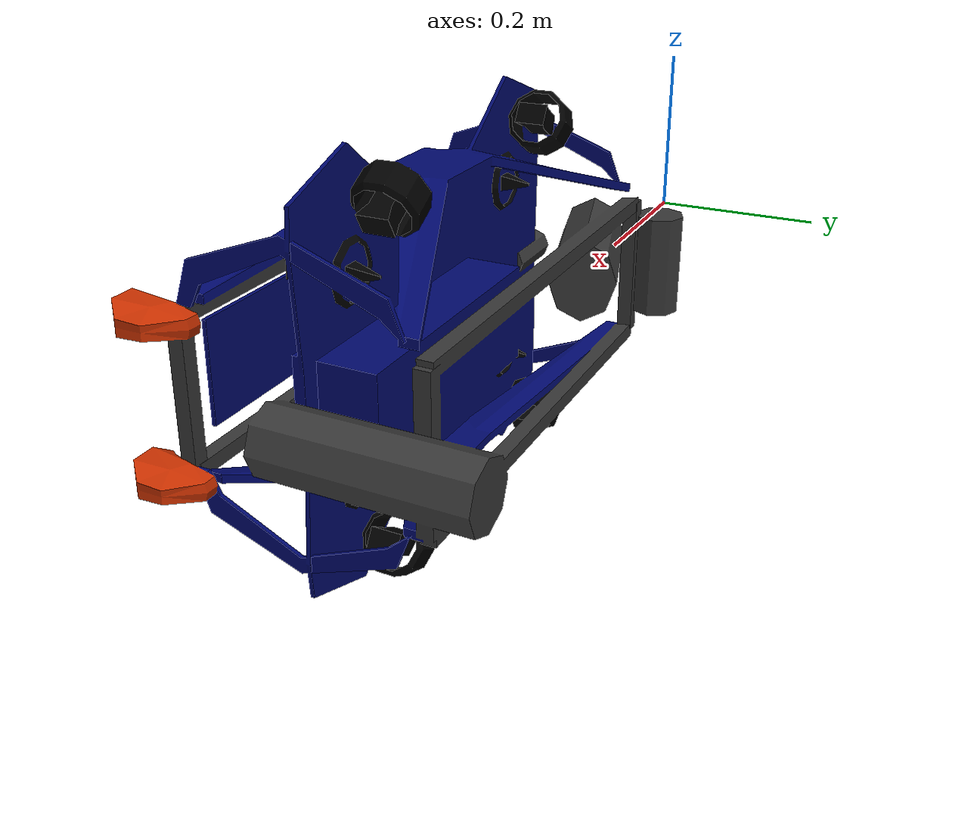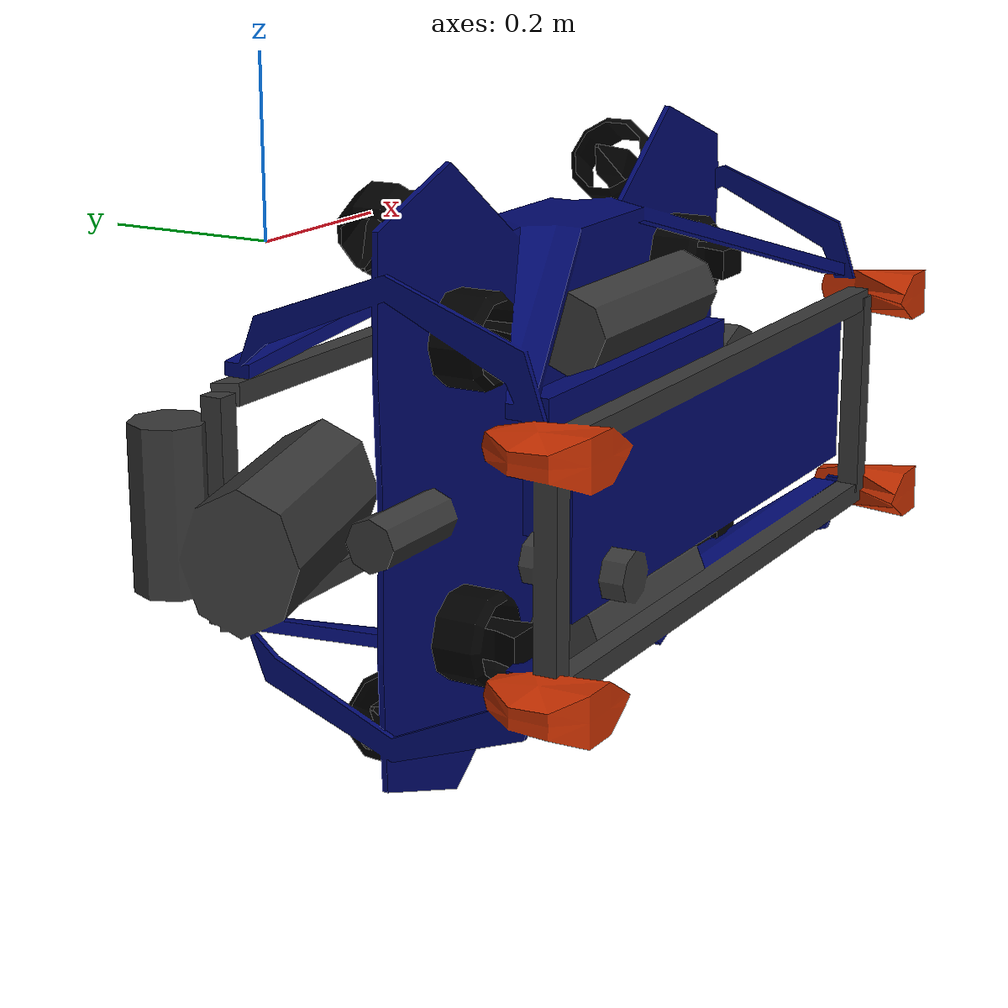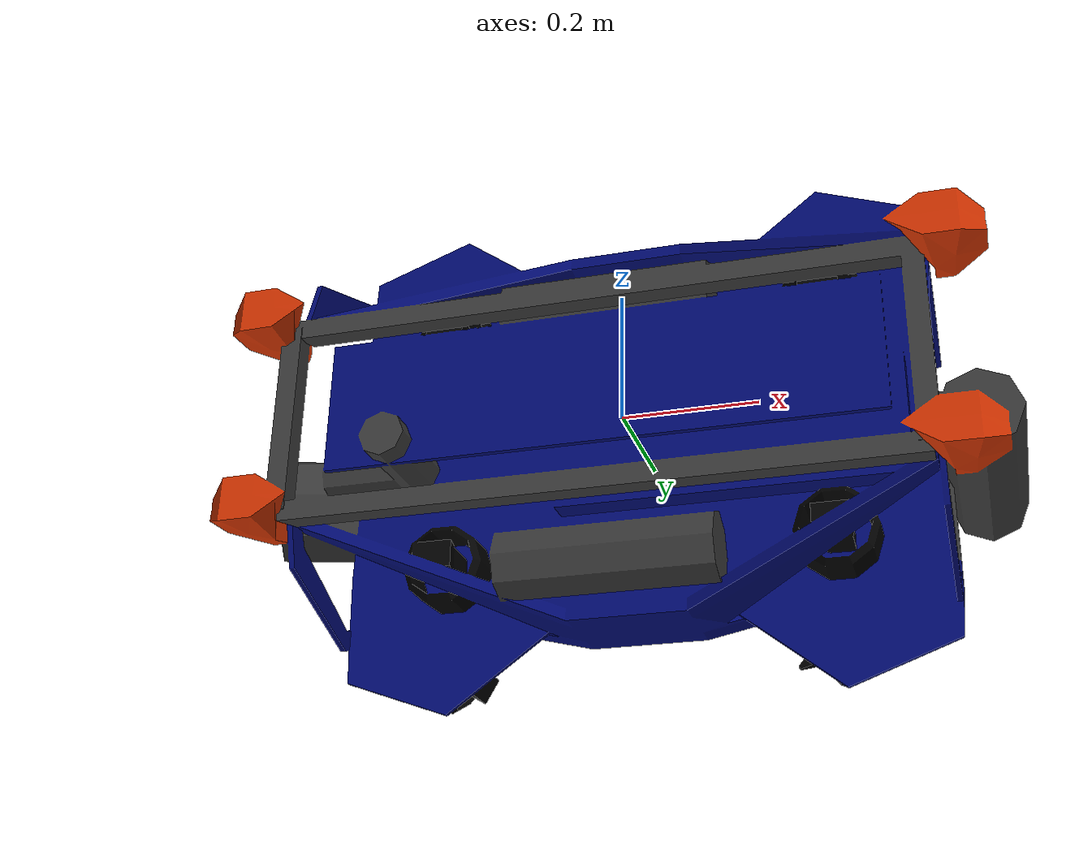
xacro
<?xml version="1.0" encoding="UTF-8"?>
<robot xmlns:xacro="http://ros.org/wiki/xacro" name="sub9">
  <!-- Include macros -->
  <xacro:include filename="./xacro/fixed_link.xacro"/>

  <xacro:include filename="$(find mil_gazebo)/xacro/camera.xacro"/>

  <!-- Base link of sub -->
  <link name="base_link">
    <inertial>
      <!-- Rough estimate of RoboSub 2022 -->
      <mass value="21.5"/>
      <!-- Estimate of inertial tensor based on inertial tensor for rectangular prism -->
      <!-- https://en.wikipedia.org/wiki/List_of_moments_of_inertia#List_of_3D_inertia_tensors -->
      <inertia ixx="0.96105" ixy="0.003" ixz="-0.02" iyy="1.799" iyz="0.0003" izz="2.1286"/>
    </inertial>
    <visual name="visual">
      <origin rpy="${pi/2} 0 ${pi}" xyz="${(0.915/2-0.009)} ${-(0.606/2)} ${-(0.381/2)}"/>
      <geometry>
        <mesh filename="./meshes/sub9.dae"/>
      </geometry>
    </visual>
    <collision name="collision">
      <origin rpy="${pi/2} 0 ${pi}" xyz="${(0.915/2-0.009)} ${-(0.606/2)} ${-(0.381/2)}"/>
      <geometry>
        <mesh filename="./meshes/sub9.dae"/>
      </geometry>
    </collision>
  </link>

  <!-- Sensors -->
  <xacro:mil_fixed_link name="front_stereo" parent="base_link" xyz="0.2559 0 0.1707" rpy="0 0 0"/>
  <xacro:mil_camera name="front_left_cam" parent="front_stereo" namespace="/camera/front/left" xyz="0 0.0445 0" rpy="0 0 0"/>
  <xacro:mil_camera name="front_right_cam" parent="front_stereo" namespace="/camera/front/right" xyz="0 -0.0445 0" rpy="0 0 0"/>
  <xacro:mil_camera name="down_left_cam" parent="base_link" namespace="/camera/down" xyz="0.054 0.105 -0.256" rpy="0 1.57 1.57"/>

  <!-- Other fixed frames -->
  <xacro:mil_fixed_link name="blueview" parent="base_link" xyz="0.333 0 0.381" rpy="3.142 0 0"/>
</robot>

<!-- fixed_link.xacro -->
<robot xmlns:xacro="http://ros.org/wiki/xacro">
  <!-- Macro to allow the quick creation of a fixed link-->
  <xacro:macro name="mil_fixed_link" params="name parent='base_link'
                        xyz:='0 0 0' rpy:='0 0 0'">
    <link name="${name}"/>
    <joint name="${name}_to_${parent}" type="fixed">
      <parent link="${parent}"/>
      <child link="${name}"/>
      <origin xyz="${xyz}" rpy="${rpy}"/>
    </joint>
  </xacro:macro>
</robot>

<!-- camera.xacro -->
<robot xmlns:xacro="http://ros.org/wiki/xacro">
  <!-- Macro for inserting a camera -->
  <xacro:macro name="mil_camera" params="name parent xyz rpy
            use_image_processing=false
            width=960 height=600 fov=1.919862177 fps=30">
    <!-- Camera Link -->
    <link name="${name}_link">
      <origin xyz="0 0 0" rpy="0 0 0"/>
      <inertial>
        <origin xyz="0 0 0" rpy="0 0 0"/>
        <mass value="0.1"/>
        <inertia ixx="0.001" iyy="0.001" izz="0.001" ixy="0" ixz="0" iyz="0"/>
      </inertial>
    </link>

    <!-- Camera Joint -->
    <joint name="${name}_joint" type="fixed">
      <origin xyz="${xyz}" rpy="${rpy}"/>
      <parent link="${parent}"/>
      <child link="${name}_link"/>
    </joint>

    <!-- This ensures that the fixed link is not simplified away -->
    <gazebo reference="${name}_joint">
      <disableFixedJointLumping>true</disableFixedJointLumping>
      <preserveFixedJoint>true</preserveFixedJoint>
    </gazebo>

    <gazebo reference="${name}_link">
      <sensor name="${name}_camera" type="camera">
        <update_rate>${fps}</update_rate>
        <visualize>true</visualize>
        <always_on>1</always_on>
        <topic>${name}</topic>
        <camera>
          <horizontal_fov>${fov}</horizontal_fov>
          <image>
            <width>${width}</width>
            <height>${height}</height>
          </image>
          <clip>
            <near>0.1</near>
            <far>50.0</far>
          </clip>
        </camera>
        <xacro:if value="${use_image_processing}">
          <plugin filename="UnderwaterCamera" name="dave_gz_sensor_plugins::UnderwaterCamera">
            <attenuationR>0.8</attenuationR>
            <attenuationG>0.5</attenuationG>
            <attenuationB>0.2</attenuationB>
            <!-- Murky Coastal Waters -->
            <backgroundR>85</backgroundR>
            <backgroundG>107</backgroundG>
            <backgroundB>47</backgroundB>
          </plugin>
        </xacro:if>
      </sensor>
    </gazebo>
  </xacro:macro>
</robot>
